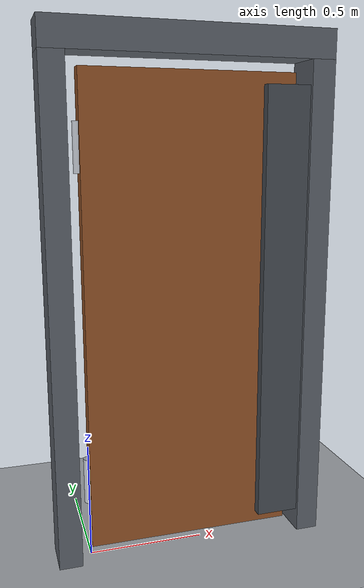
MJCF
<mujoco model="self_closing_door">
  <compiler angle="radian"/>
  <option timestep="0.002" gravity="0 0 -9.81" integrator="implicitfast"/>
  <visual>
    <headlight ambient="0.4 0.4 0.4" diffuse="0.7 0.7 0.7"/>
  </visual>

  <worldbody>
    <light name="overhead" pos="1 -2 4" dir="-0.2 0.4 -1"/>
    <camera name="overview" pos="3 -4 2.8" xyaxes="0.8 0.6 0 -0.2 0.267 0.943"/>

    <geom name="floor" type="plane" pos="0 0 0" size="4 4 0.1" rgba="0.65 0.67 0.69 1"/>
    <geom name="hinge_jamb" type="box" pos="-0.10 0 1.05" size="0.05 0.09 1.05" rgba="0.32 0.34 0.37 1"/>
    <geom name="latch_jamb" type="box" pos="1.00 0 1.05" size="0.05 0.09 1.05" rgba="0.32 0.34 0.37 1"/>
    <geom name="header" type="box" pos="0.45 0 2.16" size="0.60 0.09 0.06" rgba="0.32 0.34 0.37 1"/>

    <!-- The stop touches the rear face of the door at hinge angle zero. -->
    <geom name="closed_stop" type="box" pos="0.855 -0.055 1.05" size="0.095 0.020 0.95" friction="0.6 0.01 0.001" solref="0.006 1" solimp="0.99 0.99 0.001" rgba="0.24 0.26 0.29 1"/>

    <geom name="lower_hinge_barrel" type="cylinder" pos="0 0 0.35" size="0.022 0.10" contype="0" conaffinity="0" rgba="0.65 0.67 0.70 1"/>
    <geom name="upper_hinge_barrel" type="cylinder" pos="0 0 1.75" size="0.022 0.10" contype="0" conaffinity="0" rgba="0.65 0.67 0.70 1"/>

    <body name="door" pos="0 0 1.05">
      <!-- A slightly preloaded, damped spring closes the door and holds it against the stop. -->
      <joint name="hinge" type="hinge" pos="0 0 0" axis="0 0 1" limited="true" range="0 1.745329252" stiffness="35" springref="-0.052359878" damping="18" solreflimit="0.006 1" solimplimit="0.99 0.99 0.001"/>
      <geom name="door_panel" type="box" pos="0.45 0 0" size="0.45 0.035 1.0" mass="20" friction="0.6 0.01 0.001" solref="0.006 1" solimp="0.99 0.99 0.001" rgba="0.52 0.29 0.13 1"/>
      <geom name="handle_mount" type="capsule" fromto="0.78 0.035 0 0.78 0.075 0" size="0.018" mass="0.05" contype="0" conaffinity="0" rgba="0.75 0.77 0.80 1"/>
      <geom name="handle" type="capsule" fromto="0.66 0.075 0 0.80 0.075 0" size="0.015" mass="0.10" contype="0" conaffinity="0" rgba="0.75 0.77 0.80 1"/>
    </body>
  </worldbody>

  <keyframe>
    <key name="start" qpos="1.396263402" qvel="0"/>
  </keyframe>
</mujoco>
